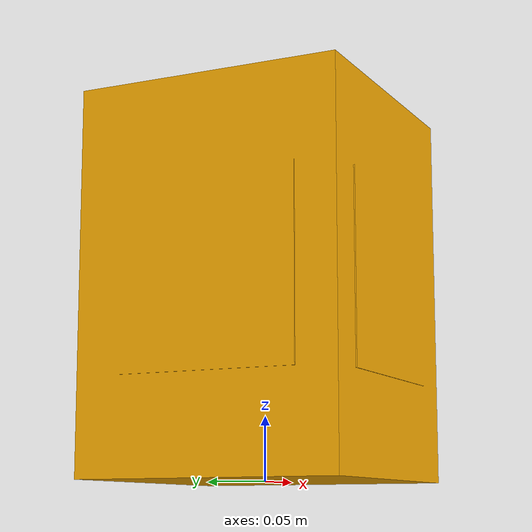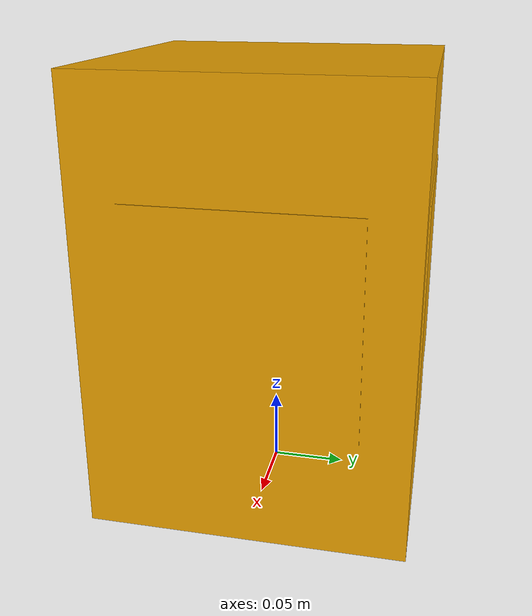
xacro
<?xml version="1.0"?>
<robot xmlns:xacro="http://www.ros.org/wiki/xacro" name="m10">

  <link name="ar_base_link">
        <visual>
            <geometry>
                <mesh filename="package://ar_tags_spawner/models/m10/m10.dae" scale="1.0 1.0 1.0"/>
            </geometry>
        </visual>

        <inertial>
            <mass value=".01"/>
            <inertia ixx=".00003" ixy="0.000" ixz="0.000" iyy=".00003" iyz="0.000" izz=".00003"/>
        </inertial>
    </link>

    <gazebo reference="ar_base_link">
        <mu1> 1 </mu1>
        <mu2> 1 </mu2>
        <kp> 1160000 </kp>
        <kd> 1000 </kd>
        <selfCollide>False</selfCollide>
    </gazebo>

    <gazebo>
        <static> true </static>
    </gazebo>

</robot>
